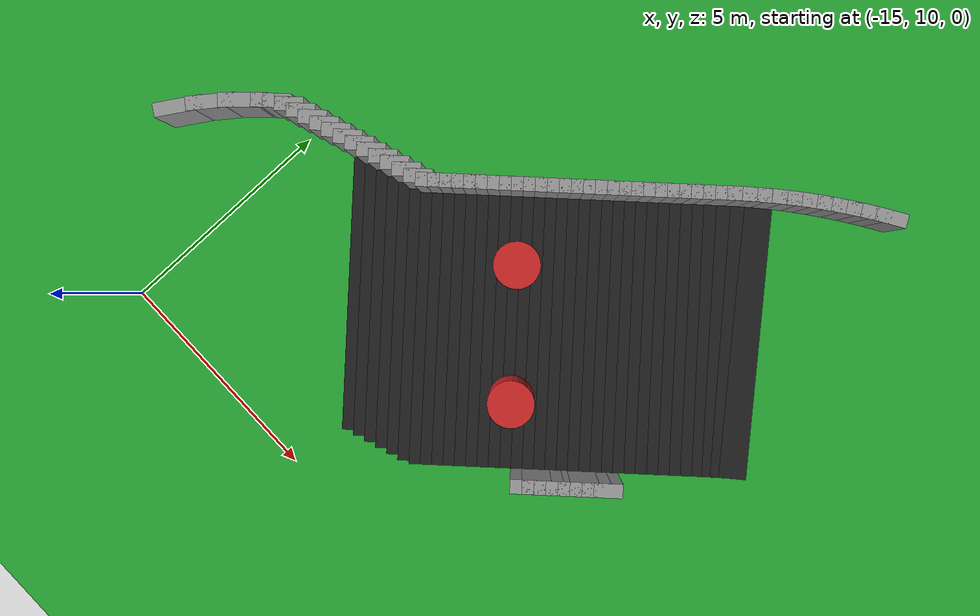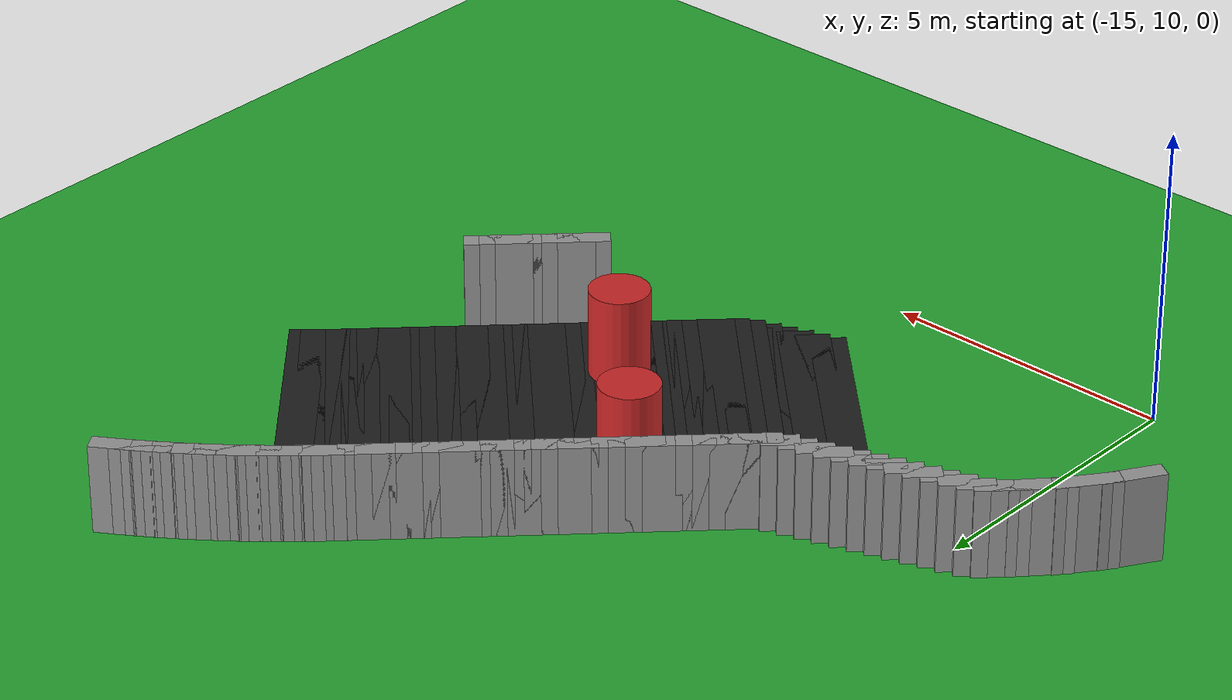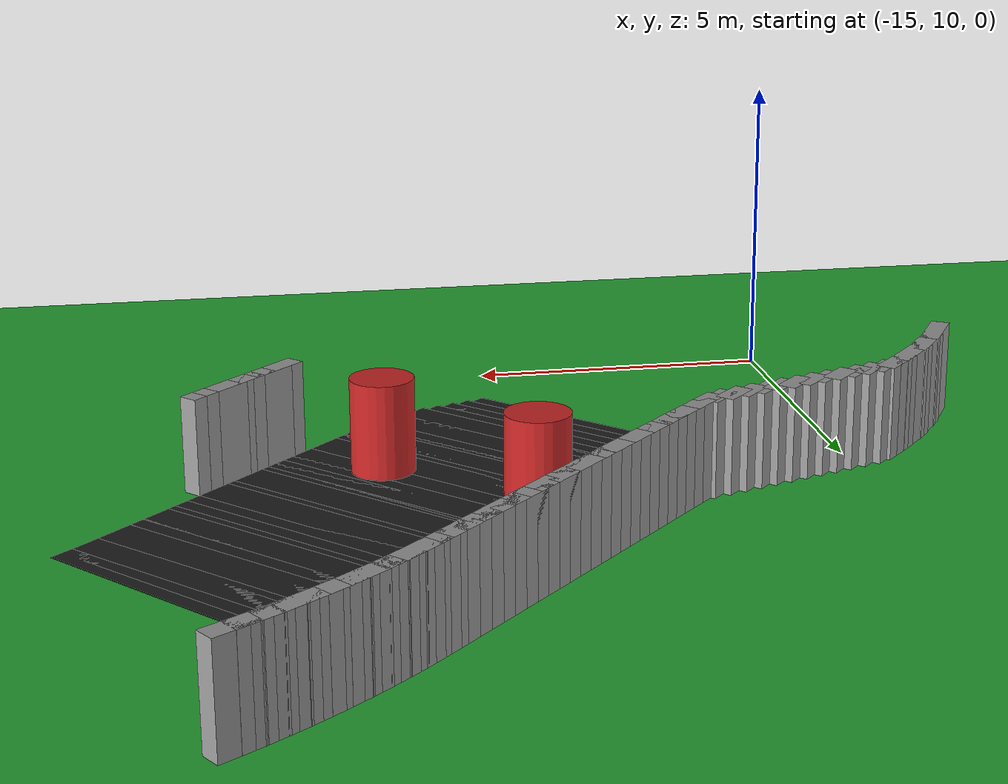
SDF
<sdf version="1.6">
 <world name="obstacle_asymturn">
  <include><uri>model://sun</uri></include>
  <model name="ground_plane">
   <static>true</static>
   <link name="link">
    <collision name="collision">
     <surface><friction><ode><mu>100</mu><mu2>50</mu2></ode></friction></surface>
     <geometry><plane><normal>0 0 1</normal><size>120 120</size></plane></geometry>
    </collision>
    <visual name="visual">
     <geometry><plane><normal>0 0 1</normal><size>120 120</size></plane></geometry>
     <material>
      <script><uri>file://media/materials/scripts/gazebo.material</uri><name>Gazebo/Green</name></script>
     </material>
    </visual>
   </link>
  </model>
  <model name="curbR_360">
   <static>true</static>
   <pose>-5.326 22.930 0.750 0 0 -2.57321</pose>
   <link name="link">
    <collision name="collision"><geometry><box><size>0.673 0.300 1.500</size></box></geometry></collision>
    <visual name="visual">
     <geometry><box><size>0.673 0.300 1.500</size></box></geometry>
     <material>
      <script><uri>file://media/materials/scripts/gazebo.material</uri><name>Gazebo/Grey</name></script>
     </material>
    </visual>
   </link>
  </model>
  <model name="curbR_361">
   <static>true</static>
   <pose>-5.588 22.759 0.750 0 0 -2.55254</pose>
   <link name="link">
    <collision name="collision"><geometry><box><size>0.673 0.300 1.500</size></box></geometry></collision>
    <visual name="visual">
     <geometry><box><size>0.673 0.300 1.500</size></box></geometry>
     <material>
      <script><uri>file://media/materials/scripts/gazebo.material</uri><name>Gazebo/Grey</name></script>
     </material>
    </visual>
   </link>
  </model>
  <model name="curbR_362">
   <static>true</static>
   <pose>-5.847 22.582 0.750 0 0 -2.53188</pose>
   <link name="link">
    <collision name="collision"><geometry><box><size>0.673 0.300 1.500</size></box></geometry></collision>
    <visual name="visual">
     <geometry><box><size>0.673 0.300 1.500</size></box></geometry>
     <material>
      <script><uri>file://media/materials/scripts/gazebo.material</uri><name>Gazebo/Grey</name></script>
     </material>
    </visual>
   </link>
  </model>
  <model name="curbR_363">
   <static>true</static>
   <pose>-6.101 22.400 0.750 0 0 -2.51121</pose>
   <link name="link">
    <collision name="collision"><geometry><box><size>0.673 0.300 1.500</size></box></geometry></collision>
    <visual name="visual">
     <geometry><box><size>0.673 0.300 1.500</size></box></geometry>
     <material>
      <script><uri>file://media/materials/scripts/gazebo.material</uri><name>Gazebo/Grey</name></script>
     </material>
    </visual>
   </link>
  </model>
  <model name="curbR_364">
   <static>true</static>
   <pose>-6.352 22.213 0.750 0 0 -2.49054</pose>
   <link name="link">
    <collision name="collision"><geometry><box><size>0.673 0.300 1.500</size></box></geometry></collision>
    <visual name="visual">
     <geometry><box><size>0.673 0.300 1.500</size></box></geometry>
     <material>
      <script><uri>file://media/materials/scripts/gazebo.material</uri><name>Gazebo/Grey</name></script>
     </material>
    </visual>
   </link>
  </model>
  <model name="curbR_365">
   <static>true</static>
   <pose>-6.600 22.021 0.750 0 0 -2.46987</pose>
   <link name="link">
    <collision name="collision"><geometry><box><size>0.673 0.300 1.500</size></box></geometry></collision>
    <visual name="visual">
     <geometry><box><size>0.673 0.300 1.500</size></box></geometry>
     <material>
      <script><uri>file://media/materials/scripts/gazebo.material</uri><name>Gazebo/Grey</name></script>
     </material>
    </visual>
   </link>
  </model>
  <model name="curbR_366">
   <static>true</static>
   <pose>-6.843 21.824 0.750 0 0 -2.44920</pose>
   <link name="link">
    <collision name="collision"><geometry><box><size>0.673 0.300 1.500</size></box></geometry></collision>
    <visual name="visual">
     <geometry><box><size>0.673 0.300 1.500</size></box></geometry>
     <material>
      <script><uri>file://media/materials/scripts/gazebo.material</uri><name>Gazebo/Grey</name></script>
     </material>
    </visual>
   </link>
  </model>
  <model name="curbR_367">
   <static>true</static>
   <pose>-7.082 21.621 0.750 0 0 -2.42853</pose>
   <link name="link">
    <collision name="collision"><geometry><box><size>0.673 0.300 1.500</size></box></geometry></collision>
    <visual name="visual">
     <geometry><box><size>0.673 0.300 1.500</size></box></geometry>
     <material>
      <script><uri>file://media/materials/scripts/gazebo.material</uri><name>Gazebo/Grey</name></script>
     </material>
    </visual>
   </link>
  </model>
  <model name="asphalt_368">
   <static>true</static>
   <pose>-5.207 19.075 0.005 0 0 -2.40787</pose>
   <link name="link">
    <visual name="visual">
     <geometry><box><size>0.608 6.000 0.010</size></box></geometry>
     <material>
      <script><uri>file://media/materials/scripts/gazebo.material</uri><name>Gazebo/Black</name></script>
     </material>
    </visual>
   </link>
  </model>
  <model name="curbR_368">
   <static>true</static>
   <pose>-7.316 21.414 0.750 0 0 -2.40787</pose>
   <link name="link">
    <collision name="collision"><geometry><box><size>0.673 0.300 1.500</size></box></geometry></collision>
    <visual name="visual">
     <geometry><box><size>0.673 0.300 1.500</size></box></geometry>
     <material>
      <script><uri>file://media/materials/scripts/gazebo.material</uri><name>Gazebo/Grey</name></script>
     </material>
    </visual>
   </link>
  </model>
  <model name="asphalt_369">
   <static>true</static>
   <pose>-5.389 18.907 0.005 0 0 -2.38720</pose>
   <link name="link">
    <visual name="visual">
     <geometry><box><size>0.608 6.000 0.010</size></box></geometry>
     <material>
      <script><uri>file://media/materials/scripts/gazebo.material</uri><name>Gazebo/Black</name></script>
     </material>
    </visual>
   </link>
  </model>
  <model name="curbR_369">
   <static>true</static>
   <pose>-7.547 21.202 0.750 0 0 -2.38720</pose>
   <link name="link">
    <collision name="collision"><geometry><box><size>0.673 0.300 1.500</size></box></geometry></collision>
    <visual name="visual">
     <geometry><box><size>0.673 0.300 1.500</size></box></geometry>
     <material>
      <script><uri>file://media/materials/scripts/gazebo.material</uri><name>Gazebo/Grey</name></script>
     </material>
    </visual>
   </link>
  </model>
  <model name="asphalt_370">
   <static>true</static>
   <pose>-5.568 18.735 0.005 0 0 -2.36653</pose>
   <link name="link">
    <visual name="visual">
     <geometry><box><size>0.608 6.000 0.010</size></box></geometry>
     <material>
      <script><uri>file://media/materials/scripts/gazebo.material</uri><name>Gazebo/Black</name></script>
     </material>
    </visual>
   </link>
  </model>
  <model name="curbR_370">
   <static>true</static>
   <pose>-7.773 20.985 0.750 0 0 -2.36653</pose>
   <link name="link">
    <collision name="collision"><geometry><box><size>0.673 0.300 1.500</size></box></geometry></collision>
    <visual name="visual">
     <geometry><box><size>0.673 0.300 1.500</size></box></geometry>
     <material>
      <script><uri>file://media/materials/scripts/gazebo.material</uri><name>Gazebo/Grey</name></script>
     </material>
    </visual>
   </link>
  </model>
  <model name="asphalt_371">
   <static>true</static>
   <pose>-5.745 18.560 0.005 0 0 -2.35619</pose>
   <link name="link">
    <visual name="visual">
     <geometry><box><size>0.610 6.000 0.010</size></box></geometry>
     <material>
      <script><uri>file://media/materials/scripts/gazebo.material</uri><name>Gazebo/Black</name></script>
     </material>
    </visual>
   </link>
  </model>
  <model name="curbR_371">
   <static>true</static>
   <pose>-7.973 20.787 0.750 0 0 -2.35619</pose>
   <link name="link">
    <collision name="collision"><geometry><box><size>0.610 0.300 1.500</size></box></geometry></collision>
    <visual name="visual">
     <geometry><box><size>0.610 0.300 1.500</size></box></geometry>
     <material>
      <script><uri>file://media/materials/scripts/gazebo.material</uri><name>Gazebo/Grey</name></script>
     </material>
    </visual>
   </link>
  </model>
  <model name="asphalt_372">
   <static>true</static>
   <pose>-5.922 18.383 0.005 0 0 -2.35619</pose>
   <link name="link">
    <visual name="visual">
     <geometry><box><size>0.610 6.000 0.010</size></box></geometry>
     <material>
      <script><uri>file://media/materials/scripts/gazebo.material</uri><name>Gazebo/Black</name></script>
     </material>
    </visual>
   </link>
  </model>
  <model name="curbR_372">
   <static>true</static>
   <pose>-8.150 20.610 0.750 0 0 -2.35619</pose>
   <link name="link">
    <collision name="collision"><geometry><box><size>0.610 0.300 1.500</size></box></geometry></collision>
    <visual name="visual">
     <geometry><box><size>0.610 0.300 1.500</size></box></geometry>
     <material>
      <script><uri>file://media/materials/scripts/gazebo.material</uri><name>Gazebo/Grey</name></script>
     </material>
    </visual>
   </link>
  </model>
  <model name="asphalt_373">
   <static>true</static>
   <pose>-6.099 18.206 0.005 0 0 -2.35619</pose>
   <link name="link">
    <visual name="visual">
     <geometry><box><size>0.610 6.000 0.010</size></box></geometry>
     <material>
      <script><uri>file://media/materials/scripts/gazebo.material</uri><name>Gazebo/Black</name></script>
     </material>
    </visual>
   </link>
  </model>
  <model name="curbR_373">
   <static>true</static>
   <pose>-8.326 20.434 0.750 0 0 -2.35619</pose>
   <link name="link">
    <collision name="collision"><geometry><box><size>0.610 0.300 1.500</size></box></geometry></collision>
    <visual name="visual">
     <geometry><box><size>0.610 0.300 1.500</size></box></geometry>
     <material>
      <script><uri>file://media/materials/scripts/gazebo.material</uri><name>Gazebo/Grey</name></script>
     </material>
    </visual>
   </link>
  </model>
  <model name="asphalt_374">
   <static>true</static>
   <pose>-6.276 18.030 0.005 0 0 -2.35619</pose>
   <link name="link">
    <visual name="visual">
     <geometry><box><size>0.610 6.000 0.010</size></box></geometry>
     <material>
      <script><uri>file://media/materials/scripts/gazebo.material</uri><name>Gazebo/Black</name></script>
     </material>
    </visual>
   </link>
  </model>
  <model name="curbR_374">
   <static>true</static>
   <pose>-8.503 20.257 0.750 0 0 -2.35619</pose>
   <link name="link">
    <collision name="collision"><geometry><box><size>0.610 0.300 1.500</size></box></geometry></collision>
    <visual name="visual">
     <geometry><box><size>0.610 0.300 1.500</size></box></geometry>
     <material>
      <script><uri>file://media/materials/scripts/gazebo.material</uri><name>Gazebo/Grey</name></script>
     </material>
    </visual>
   </link>
  </model>
  <model name="asphalt_375">
   <static>true</static>
   <pose>-6.453 17.853 0.005 0 0 -2.35619</pose>
   <link name="link">
    <visual name="visual">
     <geometry><box><size>0.610 6.000 0.010</size></box></geometry>
     <material>
      <script><uri>file://media/materials/scripts/gazebo.material</uri><name>Gazebo/Black</name></script>
     </material>
    </visual>
   </link>
  </model>
  <model name="curbR_375">
   <static>true</static>
   <pose>-8.680 20.080 0.750 0 0 -2.35619</pose>
   <link name="link">
    <collision name="collision"><geometry><box><size>0.610 0.300 1.500</size></box></geometry></collision>
    <visual name="visual">
     <geometry><box><size>0.610 0.300 1.500</size></box></geometry>
     <material>
      <script><uri>file://media/materials/scripts/gazebo.material</uri><name>Gazebo/Grey</name></script>
     </material>
    </visual>
   </link>
  </model>
  <model name="asphalt_376">
   <static>true</static>
   <pose>-6.629 17.676 0.005 0 0 -2.35619</pose>
   <link name="link">
    <visual name="visual">
     <geometry><box><size>0.610 6.000 0.010</size></box></geometry>
     <material>
      <script><uri>file://media/materials/scripts/gazebo.material</uri><name>Gazebo/Black</name></script>
     </material>
    </visual>
   </link>
  </model>
  <model name="curbR_376">
   <static>true</static>
   <pose>-8.857 19.903 0.750 0 0 -2.35619</pose>
   <link name="link">
    <collision name="collision"><geometry><box><size>0.610 0.300 1.500</size></box></geometry></collision>
    <visual name="visual">
     <geometry><box><size>0.610 0.300 1.500</size></box></geometry>
     <material>
      <script><uri>file://media/materials/scripts/gazebo.material</uri><name>Gazebo/Grey</name></script>
     </material>
    </visual>
   </link>
  </model>
  <model name="asphalt_377">
   <static>true</static>
   <pose>-6.806 17.499 0.005 0 0 -2.35619</pose>
   <link name="link">
    <visual name="visual">
     <geometry><box><size>0.610 6.000 0.010</size></box></geometry>
     <material>
      <script><uri>file://media/materials/scripts/gazebo.material</uri><name>Gazebo/Black</name></script>
     </material>
    </visual>
   </link>
  </model>
  <model name="curbR_377">
   <static>true</static>
   <pose>-9.033 19.727 0.750 0 0 -2.35619</pose>
   <link name="link">
    <collision name="collision"><geometry><box><size>0.610 0.300 1.500</size></box></geometry></collision>
    <visual name="visual">
     <geometry><box><size>0.610 0.300 1.500</size></box></geometry>
     <material>
      <script><uri>file://media/materials/scripts/gazebo.material</uri><name>Gazebo/Grey</name></script>
     </material>
    </visual>
   </link>
  </model>
  <model name="asphalt_378">
   <static>true</static>
   <pose>-6.983 17.322 0.005 0 0 -2.35619</pose>
   <link name="link">
    <visual name="visual">
     <geometry><box><size>0.610 6.000 0.010</size></box></geometry>
     <material>
      <script><uri>file://media/materials/scripts/gazebo.material</uri><name>Gazebo/Black</name></script>
     </material>
    </visual>
   </link>
  </model>
  <model name="curbR_378">
   <static>true</static>
   <pose>-9.210 19.550 0.750 0 0 -2.35619</pose>
   <link name="link">
    <collision name="collision"><geometry><box><size>0.610 0.300 1.500</size></box></geometry></collision>
    <visual name="visual">
     <geometry><box><size>0.610 0.300 1.500</size></box></geometry>
     <material>
      <script><uri>file://media/materials/scripts/gazebo.material</uri><name>Gazebo/Grey</name></script>
     </material>
    </visual>
   </link>
  </model>
  <model name="asphalt_379">
   <static>true</static>
   <pose>-7.160 17.146 0.005 0 0 -2.35619</pose>
   <link name="link">
    <visual name="visual">
     <geometry><box><size>0.610 6.000 0.010</size></box></geometry>
     <material>
      <script><uri>file://media/materials/scripts/gazebo.material</uri><name>Gazebo/Black</name></script>
     </material>
    </visual>
   </link>
  </model>
  <model name="curbR_379">
   <static>true</static>
   <pose>-9.387 19.373 0.750 0 0 -2.35619</pose>
   <link name="link">
    <collision name="collision"><geometry><box><size>0.610 0.300 1.500</size></box></geometry></collision>
    <visual name="visual">
     <geometry><box><size>0.610 0.300 1.500</size></box></geometry>
     <material>
      <script><uri>file://media/materials/scripts/gazebo.material</uri><name>Gazebo/Grey</name></script>
     </material>
    </visual>
   </link>
  </model>
  <model name="asphalt_380">
   <static>true</static>
   <pose>-7.336 16.969 0.005 0 0 -2.35619</pose>
   <link name="link">
    <visual name="visual">
     <geometry><box><size>0.610 6.000 0.010</size></box></geometry>
     <material>
      <script><uri>file://media/materials/scripts/gazebo.material</uri><name>Gazebo/Black</name></script>
     </material>
    </visual>
   </link>
  </model>
  <model name="curbL_380">
   <static>true</static>
   <pose>-5.109 14.741 0.750 0 0 -2.35619</pose>
   <link name="link">
    <collision name="collision"><geometry><box><size>0.610 0.300 1.500</size></box></geometry></collision>
    <visual name="visual">
     <geometry><box><size>0.610 0.300 1.500</size></box></geometry>
     <material>
      <script><uri>file://media/materials/scripts/gazebo.material</uri><name>Gazebo/Grey</name></script>
     </material>
    </visual>
   </link>
  </model>
  <model name="curbR_380">
   <static>true</static>
   <pose>-9.564 19.196 0.750 0 0 -2.35619</pose>
   <link name="link">
    <collision name="collision"><geometry><box><size>0.610 0.300 1.500</size></box></geometry></collision>
    <visual name="visual">
     <geometry><box><size>0.610 0.300 1.500</size></box></geometry>
     <material>
      <script><uri>file://media/materials/scripts/gazebo.material</uri><name>Gazebo/Grey</name></script>
     </material>
    </visual>
   </link>
  </model>
  <model name="asphalt_381">
   <static>true</static>
   <pose>-7.513 16.792 0.005 0 0 -2.35619</pose>
   <link name="link">
    <visual name="visual">
     <geometry><box><size>0.610 6.000 0.010</size></box></geometry>
     <material>
      <script><uri>file://media/materials/scripts/gazebo.material</uri><name>Gazebo/Black</name></script>
     </material>
    </visual>
   </link>
  </model>
  <model name="curbL_381">
   <static>true</static>
   <pose>-5.286 14.565 0.750 0 0 -2.35619</pose>
   <link name="link">
    <collision name="collision"><geometry><box><size>0.610 0.300 1.500</size></box></geometry></collision>
    <visual name="visual">
     <geometry><box><size>0.610 0.300 1.500</size></box></geometry>
     <material>
      <script><uri>file://media/materials/scripts/gazebo.material</uri><name>Gazebo/Grey</name></script>
     </material>
    </visual>
   </link>
  </model>
  <model name="curbR_381">
   <static>true</static>
   <pose>-9.741 19.019 0.750 0 0 -2.35619</pose>
   <link name="link">
    <collision name="collision"><geometry><box><size>0.610 0.300 1.500</size></box></geometry></collision>
    <visual name="visual">
     <geometry><box><size>0.610 0.300 1.500</size></box></geometry>
     <material>
      <script><uri>file://media/materials/scripts/gazebo.material</uri><name>Gazebo/Grey</name></script>
     </material>
    </visual>
   </link>
  </model>
  <model name="asphalt_382">
   <static>true</static>
   <pose>-7.690 16.615 0.005 0 0 -2.35619</pose>
   <link name="link">
    <visual name="visual">
     <geometry><box><size>0.610 6.000 0.010</size></box></geometry>
     <material>
      <script><uri>file://media/materials/scripts/gazebo.material</uri><name>Gazebo/Black</name></script>
     </material>
    </visual>
   </link>
  </model>
  <model name="curbL_382">
   <static>true</static>
   <pose>-5.463 14.388 0.750 0 0 -2.35619</pose>
   <link name="link">
    <collision name="collision"><geometry><box><size>0.610 0.300 1.500</size></box></geometry></collision>
    <visual name="visual">
     <geometry><box><size>0.610 0.300 1.500</size></box></geometry>
     <material>
      <script><uri>file://media/materials/scripts/gazebo.material</uri><name>Gazebo/Grey</name></script>
     </material>
    </visual>
   </link>
  </model>
  <model name="curbR_382">
   <static>true</static>
   <pose>-9.917 18.843 0.750 0 0 -2.35619</pose>
   <link name="link">
    <collision name="collision"><geometry><box><size>0.610 0.300 1.500</size></box></geometry></collision>
    <visual name="visual">
     <geometry><box><size>0.610 0.300 1.500</size></box></geometry>
     <material>
      <script><uri>file://media/materials/scripts/gazebo.material</uri><name>Gazebo/Grey</name></script>
     </material>
    </visual>
   </link>
  </model>
  <model name="asphalt_383">
   <static>true</static>
   <pose>-7.867 16.439 0.005 0 0 -2.35619</pose>
   <link name="link">
    <visual name="visual">
     <geometry><box><size>0.610 6.000 0.010</size></box></geometry>
     <material>
      <script><uri>file://media/materials/scripts/gazebo.material</uri><name>Gazebo/Black</name></script>
     </material>
    </visual>
   </link>
  </model>
  <model name="curbL_383">
   <static>true</static>
   <pose>-5.639 14.211 0.750 0 0 -2.35619</pose>
   <link name="link">
    <collision name="collision"><geometry><box><size>0.610 0.300 1.500</size></box></geometry></collision>
    <visual name="visual">
     <geometry><box><size>0.610 0.300 1.500</size></box></geometry>
     <material>
      <script><uri>file://media/materials/scripts/gazebo.material</uri><name>Gazebo/Grey</name></script>
     </material>
    </visual>
   </link>
  </model>
  <model name="curbR_383">
   <static>true</static>
   <pose>-10.094 18.666 0.750 0 0 -2.35619</pose>
   <link name="link">
    <collision name="collision"><geometry><box><size>0.610 0.300 1.500</size></box></geometry></collision>
    <visual name="visual">
     <geometry><box><size>0.610 0.300 1.500</size></box></geometry>
     <material>
      <script><uri>file://media/materials/scripts/gazebo.material</uri><name>Gazebo/Grey</name></script>
     </material>
    </visual>
   </link>
  </model>
  <model name="asphalt_384">
   <static>true</static>
   <pose>-8.043 16.262 0.005 0 0 -2.35619</pose>
   <link name="link">
    <visual name="visual">
     <geometry><box><size>0.610 6.000 0.010</size></box></geometry>
     <material>
      <script><uri>file://media/materials/scripts/gazebo.material</uri><name>Gazebo/Black</name></script>
     </material>
    </visual>
   </link>
  </model>
  <model name="curbL_384">
   <static>true</static>
   <pose>-5.816 14.034 0.750 0 0 -2.35619</pose>
   <link name="link">
    <collision name="collision"><geometry><box><size>0.610 0.300 1.500</size></box></geometry></collision>
    <visual name="visual">
     <geometry><box><size>0.610 0.300 1.500</size></box></geometry>
     <material>
      <script><uri>file://media/materials/scripts/gazebo.material</uri><name>Gazebo/Grey</name></script>
     </material>
    </visual>
   </link>
  </model>
  <model name="curbR_384">
   <static>true</static>
   <pose>-10.271 18.489 0.750 0 0 -2.35619</pose>
   <link name="link">
    <collision name="collision"><geometry><box><size>0.610 0.300 1.500</size></box></geometry></collision>
    <visual name="visual">
     <geometry><box><size>0.610 0.300 1.500</size></box></geometry>
     <material>
      <script><uri>file://media/materials/scripts/gazebo.material</uri><name>Gazebo/Grey</name></script>
     </material>
    </visual>
   </link>
  </model>
  <model name="asphalt_385">
   <static>true</static>
   <pose>-8.220 16.085 0.005 0 0 -2.35619</pose>
   <link name="link">
    <visual name="visual">
     <geometry><box><size>0.610 6.000 0.010</size></box></geometry>
     <material>
      <script><uri>file://media/materials/scripts/gazebo.material</uri><name>Gazebo/Black</name></script>
     </material>
    </visual>
   </link>
  </model>
  <model name="curbL_385">
   <static>true</static>
   <pose>-5.993 13.858 0.750 0 0 -2.35619</pose>
   <link name="link">
    <collision name="collision"><geometry><box><size>0.610 0.300 1.500</size></box></geometry></collision>
    <visual name="visual">
     <geometry><box><size>0.610 0.300 1.500</size></box></geometry>
     <material>
      <script><uri>file://media/materials/scripts/gazebo.material</uri><name>Gazebo/Grey</name></script>
     </material>
    </visual>
   </link>
  </model>
  <model name="curbR_385">
   <static>true</static>
   <pose>-10.448 18.312 0.750 0 0 -2.35619</pose>
   <link name="link">
    <collision name="collision"><geometry><box><size>0.610 0.300 1.500</size></box></geometry></collision>
    <visual name="visual">
     <geometry><box><size>0.610 0.300 1.500</size></box></geometry>
     <material>
      <script><uri>file://media/materials/scripts/gazebo.material</uri><name>Gazebo/Grey</name></script>
     </material>
    </visual>
   </link>
  </model>
  <model name="asphalt_386">
   <static>true</static>
   <pose>-8.397 15.908 0.005 0 0 -2.35619</pose>
   <link name="link">
    <visual name="visual">
     <geometry><box><size>0.610 6.000 0.010</size></box></geometry>
     <material>
      <script><uri>file://media/materials/scripts/gazebo.material</uri><name>Gazebo/Black</name></script>
     </material>
    </visual>
   </link>
  </model>
  <model name="curbL_386">
   <static>true</static>
   <pose>-6.170 13.681 0.750 0 0 -2.35619</pose>
   <link name="link">
    <collision name="collision"><geometry><box><size>0.610 0.300 1.500</size></box></geometry></collision>
    <visual name="visual">
     <geometry><box><size>0.610 0.300 1.500</size></box></geometry>
     <material>
      <script><uri>file://media/materials/scripts/gazebo.material</uri><name>Gazebo/Grey</name></script>
     </material>
    </visual>
   </link>
  </model>
  <model name="curbR_386">
   <static>true</static>
   <pose>-10.624 18.136 0.750 0 0 -2.35619</pose>
   <link name="link">
    <collision name="collision"><geometry><box><size>0.610 0.300 1.500</size></box></geometry></collision>
    <visual name="visual">
     <geometry><box><size>0.610 0.300 1.500</size></box></geometry>
     <material>
      <script><uri>file://media/materials/scripts/gazebo.material</uri><name>Gazebo/Grey</name></script>
     </material>
    </visual>
   </link>
  </model>
  <model name="asphalt_387">
   <static>true</static>
   <pose>-8.574 15.731 0.005 0 0 -2.35619</pose>
   <link name="link">
    <visual name="visual">
     <geometry><box><size>0.610 6.000 0.010</size></box></geometry>
     <material>
      <script><uri>file://media/materials/scripts/gazebo.material</uri><name>Gazebo/Black</name></script>
     </material>
    </visual>
   </link>
  </model>
  <model name="curbL_387">
   <static>true</static>
   <pose>-6.346 13.504 0.750 0 0 -2.35619</pose>
   <link name="link">
    <collision name="collision"><geometry><box><size>0.610 0.300 1.500</size></box></geometry></collision>
    <visual name="visual">
     <geometry><box><size>0.610 0.300 1.500</size></box></geometry>
     <material>
      <script><uri>file://media/materials/scripts/gazebo.material</uri><name>Gazebo/Grey</name></script>
     </material>
    </visual>
   </link>
  </model>
  <model name="curbR_387">
   <static>true</static>
   <pose>-10.801 17.959 0.750 0 0 -2.35619</pose>
   <link name="link">
    <collision name="collision"><geometry><box><size>0.610 0.300 1.500</size></box></geometry></collision>
    <visual name="visual">
     <geometry><box><size>0.610 0.300 1.500</size></box></geometry>
     <material>
      <script><uri>file://media/materials/scripts/gazebo.material</uri><name>Gazebo/Grey</name></script>
     </material>
    </visual>
   </link>
  </model>
  <model name="asphalt_388">
   <static>true</static>
   <pose>-8.751 15.555 0.005 0 0 -2.35619</pose>
   <link name="link">
    <visual name="visual">
     <geometry><box><size>0.610 6.000 0.010</size></box></geometry>
     <material>
      <script><uri>file://media/materials/scripts/gazebo.material</uri><name>Gazebo/Black</name></script>
     </material>
    </visual>
   </link>
  </model>
  <model name="curbR_388">
   <static>true</static>
   <pose>-10.978 17.782 0.750 0 0 -2.35619</pose>
   <link name="link">
    <collision name="collision"><geometry><box><size>0.610 0.300 1.500</size></box></geometry></collision>
    <visual name="visual">
     <geometry><box><size>0.610 0.300 1.500</size></box></geometry>
     <material>
      <script><uri>file://media/materials/scripts/gazebo.material</uri><name>Gazebo/Grey</name></script>
     </material>
    </visual>
   </link>
  </model>
  <model name="asphalt_389">
   <static>true</static>
   <pose>-8.927 15.378 0.005 0 0 -2.35619</pose>
   <link name="link">
    <visual name="visual">
     <geometry><box><size>0.610 6.000 0.010</size></box></geometry>
     <material>
      <script><uri>file://media/materials/scripts/gazebo.material</uri><name>Gazebo/Black</name></script>
     </material>
    </visual>
   </link>
  </model>
  <model name="curbR_389">
   <static>true</static>
   <pose>-11.155 17.605 0.750 0 0 -2.35619</pose>
   <link name="link">
    <collision name="collision"><geometry><box><size>0.610 0.300 1.500</size></box></geometry></collision>
    <visual name="visual">
     <geometry><box><size>0.610 0.300 1.500</size></box></geometry>
     <material>
      <script><uri>file://media/materials/scripts/gazebo.material</uri><name>Gazebo/Grey</name></script>
     </material>
    </visual>
   </link>
  </model>
  <model name="asphalt_390">
   <static>true</static>
   <pose>-9.104 15.201 0.005 0 0 -2.35619</pose>
   <link name="link">
    <visual name="visual">
     <geometry><box><size>0.610 6.000 0.010</size></box></geometry>
     <material>
      <script><uri>file://media/materials/scripts/gazebo.material</uri><name>Gazebo/Black</name></script>
     </material>
    </visual>
   </link>
  </model>
  <model name="curbR_390">
   <static>true</static>
   <pose>-11.332 17.428 0.750 0 0 -2.35619</pose>
   <link name="link">
    <collision name="collision"><geometry><box><size>0.610 0.300 1.500</size></box></geometry></collision>
    <visual name="visual">
     <geometry><box><size>0.610 0.300 1.500</size></box></geometry>
     <material>
      <script><uri>file://media/materials/scripts/gazebo.material</uri><name>Gazebo/Grey</name></script>
     </material>
    </visual>
   </link>
  </model>
  <model name="asphalt_391">
   <static>true</static>
   <pose>-9.281 15.024 0.005 0 0 -2.35619</pose>
   <link name="link">
    <visual name="visual">
     <geometry><box><size>0.610 6.000 0.010</size></box></geometry>
     <material>
      <script><uri>file://media/materials/scripts/gazebo.material</uri><name>Gazebo/Black</name></script>
     </material>
    </visual>
   </link>
  </model>
  <model name="curbR_391">
   <static>true</static>
   <pose>-11.508 17.252 0.750 0 0 -2.35619</pose>
   <link name="link">
    <collision name="collision"><geometry><box><size>0.610 0.300 1.500</size></box></geometry></collision>
    <visual name="visual">
     <geometry><box><size>0.610 0.300 1.500</size></box></geometry>
     <material>
      <script><uri>file://media/materials/scripts/gazebo.material</uri><name>Gazebo/Grey</name></script>
     </material>
    </visual>
   </link>
  </model>
  <model name="asphalt_392">
   <static>true</static>
   <pose>-9.458 14.848 0.005 0 0 -2.35619</pose>
   <link name="link">
    <visual name="visual">
     <geometry><box><size>0.610 6.000 0.010</size></box></geometry>
     <material>
      <script><uri>file://media/materials/scripts/gazebo.material</uri><name>Gazebo/Black</name></script>
     </material>
    </visual>
   </link>
  </model>
  <model name="curbR_392">
   <static>true</static>
   <pose>-11.685 17.075 0.750 0 0 -2.35619</pose>
   <link name="link">
    <collision name="collision"><geometry><box><size>0.610 0.300 1.500</size></box></geometry></collision>
    <visual name="visual">
     <geometry><box><size>0.610 0.300 1.500</size></box></geometry>
     <material>
      <script><uri>file://media/materials/scripts/gazebo.material</uri><name>Gazebo/Grey</name></script>
     </material>
    </visual>
   </link>
  </model>
  <model name="asphalt_393">
   <static>true</static>
   <pose>-9.634 14.671 0.005 0 0 -2.35619</pose>
   <link name="link">
    <visual name="visual">
     <geometry><box><size>0.610 6.000 0.010</size></box></geometry>
     <material>
      <script><uri>file://media/materials/scripts/gazebo.material</uri><name>Gazebo/Black</name></script>
     </material>
    </visual>
   </link>
  </model>
  <model name="curbR_393">
   <static>true</static>
   <pose>-11.862 16.898 0.750 0 0 -2.35619</pose>
   <link name="link">
    <collision name="collision"><geometry><box><size>0.610 0.300 1.500</size></box></geometry></collision>
    <visual name="visual">
     <geometry><box><size>0.610 0.300 1.500</size></box></geometry>
     <material>
      <script><uri>file://media/materials/scripts/gazebo.material</uri><name>Gazebo/Grey</name></script>
     </material>
    </visual>
   </link>
  </model>
  <model name="asphalt_394">
   <static>true</static>
   <pose>-9.811 14.494 0.005 0 0 -2.35619</pose>
   <link name="link">
    <visual name="visual">
     <geometry><box><size>0.610 6.000 0.010</size></box></geometry>
     <material>
      <script><uri>file://media/materials/scripts/gazebo.material</uri><name>Gazebo/Black</name></script>
     </material>
    </visual>
   </link>
  </model>
  <model name="curbR_394">
   <static>true</static>
   <pose>-12.039 16.721 0.750 0 0 -2.35619</pose>
   <link name="link">
    <collision name="collision"><geometry><box><size>0.610 0.300 1.500</size></box></geometry></collision>
    <visual name="visual">
     <geometry><box><size>0.610 0.300 1.500</size></box></geometry>
     <material>
      <script><uri>file://media/materials/scripts/gazebo.material</uri><name>Gazebo/Grey</name></script>
     </material>
    </visual>
   </link>
  </model>
  <model name="asphalt_395">
   <static>true</static>
   <pose>-9.988 14.317 0.005 0 0 -2.35619</pose>
   <link name="link">
    <visual name="visual">
     <geometry><box><size>0.610 6.000 0.010</size></box></geometry>
     <material>
      <script><uri>file://media/materials/scripts/gazebo.material</uri><name>Gazebo/Black</name></script>
     </material>
    </visual>
   </link>
  </model>
  <model name="curbR_395">
   <static>true</static>
   <pose>-12.215 16.545 0.750 0 0 -2.35619</pose>
   <link name="link">
    <collision name="collision"><geometry><box><size>0.610 0.300 1.500</size></box></geometry></collision>
    <visual name="visual">
     <geometry><box><size>0.610 0.300 1.500</size></box></geometry>
     <material>
      <script><uri>file://media/materials/scripts/gazebo.material</uri><name>Gazebo/Grey</name></script>
     </material>
    </visual>
   </link>
  </model>
  <model name="asphalt_396">
   <static>true</static>
   <pose>-10.165 14.140 0.005 0 0 -2.35619</pose>
   <link name="link">
    <visual name="visual">
     <geometry><box><size>0.610 6.000 0.010</size></box></geometry>
     <material>
      <script><uri>file://media/materials/scripts/gazebo.material</uri><name>Gazebo/Black</name></script>
     </material>
    </visual>
   </link>
  </model>
  <model name="curbR_396">
   <static>true</static>
   <pose>-12.392 16.368 0.750 0 0 -2.35619</pose>
   <link name="link">
    <collision name="collision"><geometry><box><size>0.610 0.300 1.500</size></box></geometry></collision>
    <visual name="visual">
     <geometry><box><size>0.610 0.300 1.500</size></box></geometry>
     <material>
      <script><uri>file://media/materials/scripts/gazebo.material</uri><name>Gazebo/Grey</name></script>
     </material>
    </visual>
   </link>
  </model>
  <model name="asphalt_397">
   <static>true</static>
   <pose>-10.391 14.013 0.005 0 0 -2.35619</pose>
   <link name="link">
    <visual name="visual">
     <geometry><box><size>0.610 6.000 0.010</size></box></geometry>
     <material>
      <script><uri>file://media/materials/scripts/gazebo.material</uri><name>Gazebo/Black</name></script>
     </material>
    </visual>
   </link>
  </model>
  <model name="curbR_397">
   <static>true</static>
   <pose>-12.619 16.241 0.750 0 0 -2.35619</pose>
   <link name="link">
    <collision name="collision"><geometry><box><size>0.610 0.300 1.500</size></box></geometry></collision>
    <visual name="visual">
     <geometry><box><size>0.610 0.300 1.500</size></box></geometry>
     <material>
      <script><uri>file://media/materials/scripts/gazebo.material</uri><name>Gazebo/Grey</name></script>
     </material>
    </visual>
   </link>
  </model>
  <model name="asphalt_398">
   <static>true</static>
   <pose>-10.656 13.925 0.005 0 0 -2.35619</pose>
   <link name="link">
    <visual name="visual">
     <geometry><box><size>0.610 6.000 0.010</size></box></geometry>
     <material>
      <script><uri>file://media/materials/scripts/gazebo.material</uri><name>Gazebo/Black</name></script>
     </material>
    </visual>
   </link>
  </model>
  <model name="curbR_398">
   <static>true</static>
   <pose>-12.884 16.152 0.750 0 0 -2.35619</pose>
   <link name="link">
    <collision name="collision"><geometry><box><size>0.610 0.300 1.500</size></box></geometry></collision>
    <visual name="visual">
     <geometry><box><size>0.610 0.300 1.500</size></box></geometry>
     <material>
      <script><uri>file://media/materials/scripts/gazebo.material</uri><name>Gazebo/Grey</name></script>
     </material>
    </visual>
   </link>
  </model>
  <model name="asphalt_399">
   <static>true</static>
   <pose>-10.922 13.837 0.005 0 0 -2.35619</pose>
   <link name="link">
    <visual name="visual">
     <geometry><box><size>0.610 6.000 0.010</size></box></geometry>
     <material>
      <script><uri>file://media/materials/scripts/gazebo.material</uri><name>Gazebo/Black</name></script>
     </material>
    </visual>
   </link>
  </model>
  <model name="curbR_399">
   <static>true</static>
   <pose>-13.149 16.064 0.750 0 0 -2.35619</pose>
   <link name="link">
    <collision name="collision"><geometry><box><size>0.610 0.300 1.500</size></box></geometry></collision>
    <visual name="visual">
     <geometry><box><size>0.610 0.300 1.500</size></box></geometry>
     <material>
      <script><uri>file://media/materials/scripts/gazebo.material</uri><name>Gazebo/Grey</name></script>
     </material>
    </visual>
   </link>
  </model>
  <model name="asphalt_400">
   <static>true</static>
   <pose>-11.187 13.748 0.005 0 0 -2.35619</pose>
   <link name="link">
    <visual name="visual">
     <geometry><box><size>0.610 6.000 0.010</size></box></geometry>
     <material>
      <script><uri>file://media/materials/scripts/gazebo.material</uri><name>Gazebo/Black</name></script>
     </material>
    </visual>
   </link>
  </model>
  <model name="curbR_400">
   <static>true</static>
   <pose>-13.414 15.976 0.750 0 0 -2.35619</pose>
   <link name="link">
    <collision name="collision"><geometry><box><size>0.610 0.300 1.500</size></box></geometry></collision>
    <visual name="visual">
     <geometry><box><size>0.610 0.300 1.500</size></box></geometry>
     <material>
      <script><uri>file://media/materials/scripts/gazebo.material</uri><name>Gazebo/Grey</name></script>
     </material>
    </visual>
   </link>
  </model>
  <model name="asphalt_401">
   <static>true</static>
   <pose>-11.452 13.660 0.005 0 0 -2.35619</pose>
   <link name="link">
    <visual name="visual">
     <geometry><box><size>0.610 6.000 0.010</size></box></geometry>
     <material>
      <script><uri>file://media/materials/scripts/gazebo.material</uri><name>Gazebo/Black</name></script>
     </material>
    </visual>
   </link>
  </model>
  <model name="curbR_401">
   <static>true</static>
   <pose>-13.679 15.887 0.750 0 0 -2.35619</pose>
   <link name="link">
    <collision name="collision"><geometry><box><size>0.610 0.300 1.500</size></box></geometry></collision>
    <visual name="visual">
     <geometry><box><size>0.610 0.300 1.500</size></box></geometry>
     <material>
      <script><uri>file://media/materials/scripts/gazebo.material</uri><name>Gazebo/Grey</name></script>
     </material>
    </visual>
   </link>
  </model>
  <model name="asphalt_402">
   <static>true</static>
   <pose>-11.717 13.571 0.005 0 0 -2.35619</pose>
   <link name="link">
    <visual name="visual">
     <geometry><box><size>0.610 6.000 0.010</size></box></geometry>
     <material>
      <script><uri>file://media/materials/scripts/gazebo.material</uri><name>Gazebo/Black</name></script>
     </material>
    </visual>
   </link>
  </model>
  <model name="curbR_402">
   <static>true</static>
   <pose>-13.944 15.799 0.750 0 0 -2.35619</pose>
   <link name="link">
    <collision name="collision"><geometry><box><size>0.610 0.300 1.500</size></box></geometry></collision>
    <visual name="visual">
     <geometry><box><size>0.610 0.300 1.500</size></box></geometry>
     <material>
      <script><uri>file://media/materials/scripts/gazebo.material</uri><name>Gazebo/Grey</name></script>
     </material>
    </visual>
   </link>
  </model>
  <model name="curbR_403">
   <static>true</static>
   <pose>-14.210 15.710 0.750 0 0 -2.35619</pose>
   <link name="link">
    <collision name="collision"><geometry><box><size>0.610 0.300 1.500</size></box></geometry></collision>
    <visual name="visual">
     <geometry><box><size>0.610 0.300 1.500</size></box></geometry>
     <material>
      <script><uri>file://media/materials/scripts/gazebo.material</uri><name>Gazebo/Grey</name></script>
     </material>
    </visual>
   </link>
  </model>
  <model name="curbR_404">
   <static>true</static>
   <pose>-14.475 15.622 0.750 0 0 -2.35619</pose>
   <link name="link">
    <collision name="collision"><geometry><box><size>0.610 0.300 1.500</size></box></geometry></collision>
    <visual name="visual">
     <geometry><box><size>0.610 0.300 1.500</size></box></geometry>
     <material>
      <script><uri>file://media/materials/scripts/gazebo.material</uri><name>Gazebo/Grey</name></script>
     </material>
    </visual>
   </link>
  </model>
  <model name="curbR_405">
   <static>true</static>
   <pose>-14.740 15.534 0.750 0 0 -2.35619</pose>
   <link name="link">
    <collision name="collision"><geometry><box><size>0.610 0.300 1.500</size></box></geometry></collision>
    <visual name="visual">
     <geometry><box><size>0.610 0.300 1.500</size></box></geometry>
     <material>
      <script><uri>file://media/materials/scripts/gazebo.material</uri><name>Gazebo/Grey</name></script>
     </material>
    </visual>
   </link>
  </model>
  <model name="curbR_406">
   <static>true</static>
   <pose>-15.005 15.445 0.750 0 0 -2.35619</pose>
   <link name="link">
    <collision name="collision"><geometry><box><size>0.610 0.300 1.500</size></box></geometry></collision>
    <visual name="visual">
     <geometry><box><size>0.610 0.300 1.500</size></box></geometry>
     <material>
      <script><uri>file://media/materials/scripts/gazebo.material</uri><name>Gazebo/Grey</name></script>
     </material>
    </visual>
   </link>
  </model>
  <model name="curbR_407">
   <static>true</static>
   <pose>-15.270 15.357 0.750 0 0 -2.35619</pose>
   <link name="link">
    <collision name="collision"><geometry><box><size>0.610 0.300 1.500</size></box></geometry></collision>
    <visual name="visual">
     <geometry><box><size>0.610 0.300 1.500</size></box></geometry>
     <material>
      <script><uri>file://media/materials/scripts/gazebo.material</uri><name>Gazebo/Grey</name></script>
     </material>
    </visual>
   </link>
  </model>
  <model name="curbR_408">
   <static>true</static>
   <pose>-15.535 15.268 0.750 0 0 -2.35619</pose>
   <link name="link">
    <collision name="collision"><geometry><box><size>0.610 0.300 1.500</size></box></geometry></collision>
    <visual name="visual">
     <geometry><box><size>0.610 0.300 1.500</size></box></geometry>
     <material>
      <script><uri>file://media/materials/scripts/gazebo.material</uri><name>Gazebo/Grey</name></script>
     </material>
    </visual>
   </link>
  </model>
  <model name="curbR_409">
   <static>true</static>
   <pose>-15.751 15.130 0.750 0 0 -2.35619</pose>
   <link name="link">
    <collision name="collision"><geometry><box><size>0.610 0.300 1.500</size></box></geometry></collision>
    <visual name="visual">
     <geometry><box><size>0.610 0.300 1.500</size></box></geometry>
     <material>
      <script><uri>file://media/materials/scripts/gazebo.material</uri><name>Gazebo/Grey</name></script>
     </material>
    </visual>
   </link>
  </model>
  <model name="curbR_410">
   <static>true</static>
   <pose>-15.928 14.954 0.750 0 0 -2.35619</pose>
   <link name="link">
    <collision name="collision"><geometry><box><size>0.610 0.300 1.500</size></box></geometry></collision>
    <visual name="visual">
     <geometry><box><size>0.610 0.300 1.500</size></box></geometry>
     <material>
      <script><uri>file://media/materials/scripts/gazebo.material</uri><name>Gazebo/Grey</name></script>
     </material>
    </visual>
   </link>
  </model>
  <model name="curbR_411">
   <static>true</static>
   <pose>-16.245 14.614 0.750 0 0 -2.30999</pose>
   <link name="link">
    <collision name="collision"><geometry><box><size>1.039 0.300 1.500</size></box></geometry></collision>
    <visual name="visual">
     <geometry><box><size>1.039 0.300 1.500</size></box></geometry>
     <material>
      <script><uri>file://media/materials/scripts/gazebo.material</uri><name>Gazebo/Grey</name></script>
     </material>
    </visual>
   </link>
  </model>
  <model name="curbR_412">
   <static>true</static>
   <pose>-16.678 14.093 0.750 0 0 -2.21759</pose>
   <link name="link">
    <collision name="collision"><geometry><box><size>1.039 0.300 1.500</size></box></geometry></collision>
    <visual name="visual">
     <geometry><box><size>1.039 0.300 1.500</size></box></geometry>
     <material>
      <script><uri>file://media/materials/scripts/gazebo.material</uri><name>Gazebo/Grey</name></script>
     </material>
    </visual>
   </link>
  </model>
  <model name="curbR_413">
   <static>true</static>
   <pose>-17.061 13.533 0.750 0 0 -2.12520</pose>
   <link name="link">
    <collision name="collision"><geometry><box><size>1.039 0.300 1.500</size></box></geometry></collision>
    <visual name="visual">
     <geometry><box><size>1.039 0.300 1.500</size></box></geometry>
     <material>
      <script><uri>file://media/materials/scripts/gazebo.material</uri><name>Gazebo/Grey</name></script>
     </material>
    </visual>
   </link>
  </model>
  <model name="obs_11">
   <static>true</static>
   <pose>-9.853 16.502 0.750 0 0 0</pose>
   <link name="link">
    <collision name="collision">
     <geometry><cylinder><radius>0.500</radius><length>1.500</length></cylinder></geometry>
    </collision>
    <visual name="visual">
     <geometry><cylinder><radius>0.500</radius><length>1.500</length></cylinder></geometry>
     <material>
      <script><uri>file://media/materials/scripts/gazebo.material</uri><name>Gazebo/Red</name></script>
     </material>
    </visual>
   </link>
  </model>
  <model name="obs_12">
   <static>true</static>
   <pose>-7.803 14.452 0.750 0 0 0</pose>
   <link name="link">
    <collision name="collision">
     <geometry><cylinder><radius>0.500</radius><length>1.500</length></cylinder></geometry>
    </collision>
    <visual name="visual">
     <geometry><cylinder><radius>0.500</radius><length>1.500</length></cylinder></geometry>
     <material>
      <script><uri>file://media/materials/scripts/gazebo.material</uri><name>Gazebo/Red</name></script>
     </material>
    </visual>
   </link>
  </model>
 </world>
</sdf>
